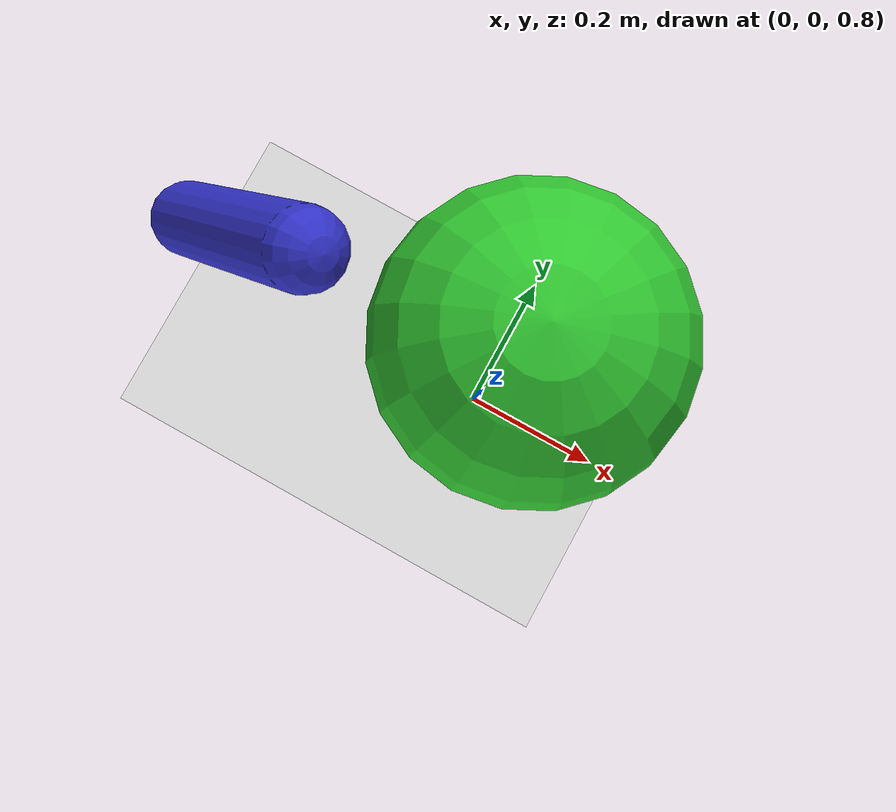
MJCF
<mujoco model="humanoid_twin">
    <compiler angle="radian" coordinate="local"/>
    <option timestep="0.01"/>

    <worldbody>
        <light directional="true" diffuse=".8 .8 .8" specular=".2 .2 .2" pos="0 0 5" dir="0 0 -1"/>
        <geom type="plane" size="5 5 .1" rgba=".9 .9 .9 1"/>

        <body name="pelvis" pos="0 0 1.2">
            <geom type="capsule" size="0.1 0.2" rgba="0.8 0.2 0.2 1"/>

            <body name="head" pos="0 0 0.4">
                <joint name="ValveBipedBip01_Head1_014" type="hinge" axis="0 1 0" range="-1 1"/>
                <geom type="sphere" size="0.15" rgba="0.2 0.8 0.2 1"/>
            </body>

            <body name="left_arm" pos="-0.25 0 0.2">
                <joint name="ValveBipedBip01_L_UpperArm_017" type="hinge" axis="1 0 0" range="-2 2"/>
                <geom type="capsule" size="0.05 0.2" fromto="0 0 0 -0.2 0 -0.3" rgba="0.2 0.2 0.8 1"/>
            </body>
        </body>
    </worldbody>

    <actuator>
        <motor joint="ValveBipedBip01_Head1_014" ctrlrange="-10 10"/>
        <motor joint="ValveBipedBip01_L_UpperArm_017" ctrlrange="-20 20"/>
    </actuator>
</mujoco>
